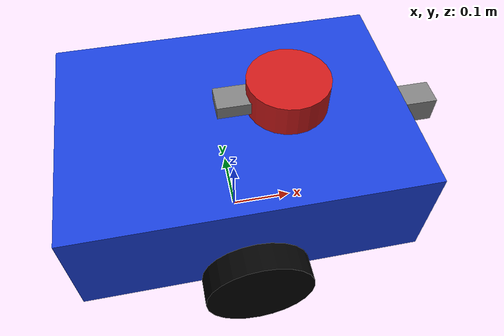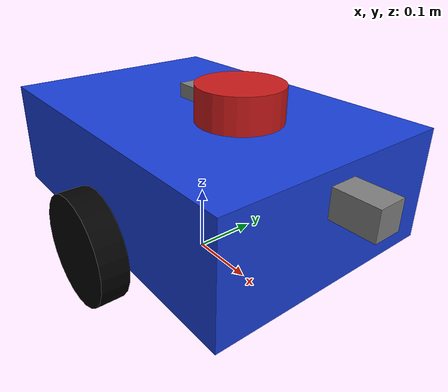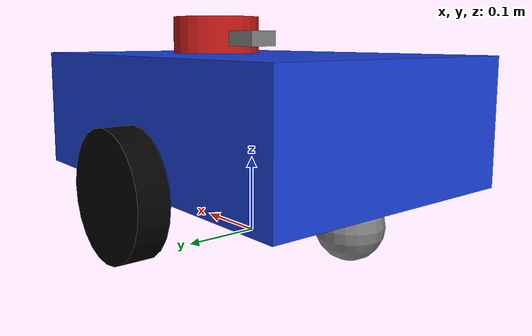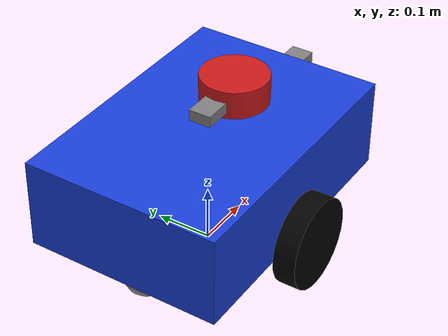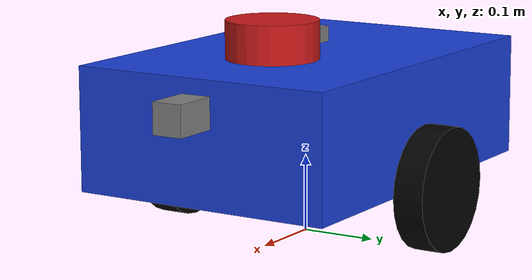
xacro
<?xml version="1.0"?>
<robot name="my_robot" xmlns:xacro="http://www.ros.org/wiki/xacro">

  <!-- Robot Dimensions -->

  <xacro:property name="base_length" value="0.50"/>
  <xacro:property name="base_width" value="0.35"/>
  <xacro:property name="base_height" value="0.16"/>

  <xacro:property name="wheel_radius" value="0.08"/>
  <xacro:property name="wheel_width" value="0.04"/>

  <xacro:property name="caster_radius" value="0.04"/>

  <!-- Materials -->

  <material name="blue">
    <color rgba="0.1 0.25 0.85 1"/>
  </material>

  <material name="black">
    <color rgba="0.01 0.01 0.01 1"/>
  </material>

  <material name="gray">
    <color rgba="0.5 0.5 0.5 1"/>
  </material>

  <material name="red">
    <color rgba="0.8 0.1 0.1 1"/>
  </material>

  <!-- Inertia Macros -->

  <xacro:macro name="box_inertia" params="m x y z">
    <inertial>
      <mass value="${m}"/>
      <origin xyz="0 0 0" rpy="0 0 0"/>
      <inertia
        ixx="${m / 12.0 * (y*y + z*z)}"
        ixy="0"
        ixz="0"
        iyy="${m / 12.0 * (x*x + z*z)}"
        iyz="0"
        izz="${m / 12.0 * (x*x + y*y)}"/>
    </inertial>
  </xacro:macro>

  <xacro:macro name="cylinder_inertia" params="m r h">
    <inertial>
      <mass value="${m}"/>
      <origin xyz="0 0 0" rpy="0 0 0"/>
      <inertia
        ixx="${m / 12.0 * (3*r*r + h*h)}"
        ixy="0"
        ixz="0"
        iyy="${m / 12.0 * (3*r*r + h*h)}"
        iyz="0"
        izz="${m / 2.0 * r*r}"/>
    </inertial>
  </xacro:macro>

  <xacro:macro name="sphere_inertia" params="m r">
    <inertial>
      <mass value="${m}"/>
      <origin xyz="0 0 0" rpy="0 0 0"/>
      <inertia
        ixx="${2.0 / 5.0 * m * r*r}"
        ixy="0"
        ixz="0"
        iyy="${2.0 / 5.0 * m * r*r}"
        iyz="0"
        izz="${2.0 / 5.0 * m * r*r}"/>
    </inertial>
  </xacro:macro>

  <!-- Base Footprint -->

  <link name="base_footprint"/>

  <!-- Base Link -->

  <link name="base_link">
    <visual>
      <origin xyz="0 0 0" rpy="0 0 0"/>
      <geometry>
        <box size="${base_length} ${base_width} ${base_height}"/>
      </geometry>
      <material name="blue"/>
    </visual>

    <collision>
      <origin xyz="0 0 0" rpy="0 0 0"/>
      <geometry>
        <box size="${base_length} ${base_width} ${base_height}"/>
      </geometry>
    </collision>

    <xacro:box_inertia m="5.0" x="${base_length}" y="${base_width}" z="${base_height}"/>
  </link>

  <joint name="base_footprint_to_base_link" type="fixed">
    <parent link="base_footprint"/>
    <child link="base_link"/>
    <origin xyz="0 0 ${wheel_radius + base_height / 2.0}" rpy="0 0 0"/>
  </joint>

  <!-- Left Wheel -->

  <link name="left_wheel_link">
    <visual>
      <origin xyz="0 0 0" rpy="1.5708 0 0"/>
      <geometry>
        <cylinder radius="${wheel_radius}" length="${wheel_width}"/>
      </geometry>
      <material name="black"/>
    </visual>

    <collision>
      <origin xyz="0 0 0" rpy="1.5708 0 0"/>
      <geometry>
        <cylinder radius="${wheel_radius}" length="${wheel_width}"/>
      </geometry>
    </collision>

    <xacro:cylinder_inertia m="0.5" r="${wheel_radius}" h="${wheel_width}"/>
  </link>

  <joint name="left_wheel_joint" type="continuous">
    <parent link="base_link"/>
    <child link="left_wheel_link"/>
    <origin xyz="0 ${base_width / 2.0 + wheel_width / 2.0} ${-base_height / 2.0}" rpy="0 0 0"/>
    <axis xyz="0 1 0"/>
  </joint>

  <!-- Right Wheel -->

  <link name="right_wheel_link">
    <visual>
      <origin xyz="0 0 0" rpy="1.5708 0 0"/>
      <geometry>
        <cylinder radius="${wheel_radius}" length="${wheel_width}"/>
      </geometry>
      <material name="black"/>
    </visual>

    <collision>
      <origin xyz="0 0 0" rpy="1.5708 0 0"/>
      <geometry>
        <cylinder radius="${wheel_radius}" length="${wheel_width}"/>
      </geometry>
    </collision>

    <xacro:cylinder_inertia m="0.5" r="${wheel_radius}" h="${wheel_width}"/>
  </link>

  <joint name="right_wheel_joint" type="continuous">
    <parent link="base_link"/>
    <child link="right_wheel_link"/>
    <origin xyz="0 ${-base_width / 2.0 - wheel_width / 2.0} ${-base_height / 2.0}" rpy="0 0 0"/>
    <axis xyz="0 1 0"/>
  </joint>

  <!-- Caster Wheel -->

  <link name="caster_wheel_link">
    <visual>
      <origin xyz="0 0 0" rpy="0 0 0"/>
      <geometry>
        <sphere radius="${caster_radius}"/>
      </geometry>
      <material name="gray"/>
    </visual>

    <collision>
      <origin xyz="0 0 0" rpy="0 0 0"/>
      <geometry>
        <sphere radius="${caster_radius}"/>
      </geometry>
    </collision>

    <xacro:sphere_inertia m="4" r="${caster_radius}"/>
  </link>

  <joint name="caster_wheel_joint" type="fixed">
    <parent link="base_link"/>
    <child link="caster_wheel_link"/>
    <origin xyz="-0.18 0 ${-base_height / 2.0 - caster_radius + 0.01}" rpy="0 0 0"/>
  </joint>

  <!-- LiDAR Sensor -->

  <link name="lidar_link">
    <visual>
      <origin xyz="0 0 0.025" rpy="0 0 0"/>
      <geometry>
        <cylinder radius="0.06" length="0.05"/>
      </geometry>
      <material name="red"/>
    </visual>

    <collision>
      <origin xyz="0 0 0.025" rpy="0 0 0"/>
      <geometry>
        <cylinder radius="0.06" length="0.05"/>
      </geometry>
    </collision>

    <xacro:cylinder_inertia m="0.2" r="0.06" h="0.05"/>
  </link>

  <joint name="lidar_joint" type="fixed">
    <parent link="base_link"/>
    <child link="lidar_link"/>
    <origin xyz="0.08 0 ${base_height / 2.0}" rpy="0 0 0"/>
  </joint>

  <!-- Camera Sensor -->

  <link name="camera_link">
    <visual>
      <origin xyz="0 0 0" rpy="0 0 0"/>
      <geometry>
        <box size="0.06 0.04 0.04"/>
      </geometry>
      <material name="gray"/>
    </visual>

    <collision>
      <origin xyz="0 0 0" rpy="0 0 0"/>
      <geometry>
        <box size="0.06 0.04 0.04"/>
      </geometry>
    </collision>

    <xacro:box_inertia m="0.1" x="0.06" y="0.04" z="0.04"/>
  </link>

  <joint name="camera_joint" type="fixed">
    <parent link="base_link"/>
    <child link="camera_link"/>
    <origin xyz="${base_length / 2.0 + 0.03} 0 0.04" rpy="0 0 0"/>
  </joint>

  <!-- Gazebo Colors -->

  <gazebo reference="base_link">
    <material>Gazebo/Blue</material>
  </gazebo>

  <gazebo reference="left_wheel_link">
    <material>Gazebo/Black</material>
  </gazebo>

  <gazebo reference="right_wheel_link">
    <material>Gazebo/Black</material>
  </gazebo>

  <gazebo reference="caster_wheel_link">
    <material>Gazebo/Grey</material>
  </gazebo>

  <gazebo reference="lidar_link">
    <material>Gazebo/Red</material>
  </gazebo>

  <gazebo reference="camera_link">
    <material>Gazebo/Grey</material>
  </gazebo>

  <!-- IMU Link -->

  <link name="imu_link">
    <visual>
      <origin xyz="0 0 0" rpy="0 0 0"/>
      <geometry>
        <box size="0.05 0.04 0.02"/>
      </geometry>
      <material name="gray"/>
    </visual>

    <collision>
      <origin xyz="0 0 0" rpy="0 0 0"/>
      <geometry>
        <box size="0.05 0.04 0.02"/>
      </geometry>
    </collision>

    <xacro:box_inertia m="0.05" x="0.05" y="0.04" z="0.02"/>
  </link>

  <joint name="imu_joint" type="fixed">
    <parent link="base_link"/>
    <child link="imu_link"/>
    <origin xyz="0 0 0.10" rpy="0 0 0"/>
  </joint>

<!-- Gazebo IMU Sensor -->

<gazebo reference="imu_link">
  <sensor name="imu_sensor" type="imu">
    <always_on>1</always_on>
    <update_rate>50</update_rate>
    <visualize>true</visualize>
    <topic>/imu</topic>

    <imu>
      <angular_velocity>
        <x>
          <noise type="gaussian">
            <mean>0.0</mean>
            <stddev>0.0002</stddev>
          </noise>
        </x>
        <y>
          <noise type="gaussian">
            <mean>0.0</mean>
            <stddev>0.0002</stddev>
          </noise>
        </y>
        <z>
          <noise type="gaussian">
            <mean>0.0</mean>
            <stddev>0.0002</stddev>
          </noise>
        </z>
      </angular_velocity>

      <linear_acceleration>
        <x>
          <noise type="gaussian">
            <mean>0.0</mean>
            <stddev>0.01</stddev>
          </noise>
        </x>
        <y>
          <noise type="gaussian">
            <mean>0.0</mean>
            <stddev>0.01</stddev>
          </noise>
        </y>
        <z>
          <noise type="gaussian">
            <mean>0.0</mean>
            <stddev>0.01</stddev>
          </noise>
        </z>
      </linear_acceleration>
    </imu>
  </sensor>
</gazebo>

<!-- Gazebo Camera Sensor -->

<gazebo reference="camera_link">
  <sensor name="camera_link" type="camera">
    <always_on>1</always_on>
    <update_rate>30</update_rate>
    <visualize>true</visualize>
    <topic>/image_raw</topic>
    <gz_frame_id>camera_link</gz_frame_id>

    <camera>
      <horizontal_fov>1.047</horizontal_fov>

      <image>
        <width>640</width>
        <height>480</height>
        <format>R8G8B8</format>
      </image>

      <clip>
        <near>0.05</near>
        <far>20.0</far>
      </clip>

      <noise>
        <type>gaussian</type>
        <mean>0.0</mean>
        <stddev>0.007</stddev>
      </noise>
    </camera>
  </sensor>
</gazebo>

<!-- Gazebo Diff Drive Plugin -->

<gazebo>
  <plugin
    filename="ignition-gazebo-diff-drive-system"
    name="ignition::gazebo::systems::DiffDrive">

    <left_joint>left_wheel_joint</left_joint>
    <right_joint>right_wheel_joint</right_joint>

    <wheel_separation>0.39</wheel_separation>
    <wheel_radius>0.08</wheel_radius>

    <odom_publish_frequency>50</odom_publish_frequency>

    <topic>/cmd_vel</topic>
    <odom_topic>/odom</odom_topic>
    <tf_topic>/tf</tf_topic>

    <frame_id>odom</frame_id>
    <child_frame_id>base_footprint</child_frame_id>
  </plugin>
</gazebo>

</robot>
